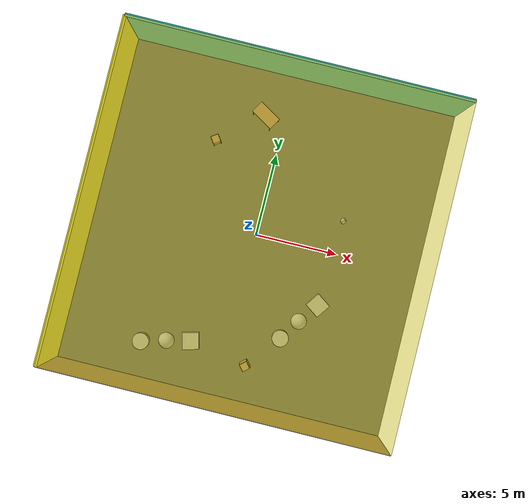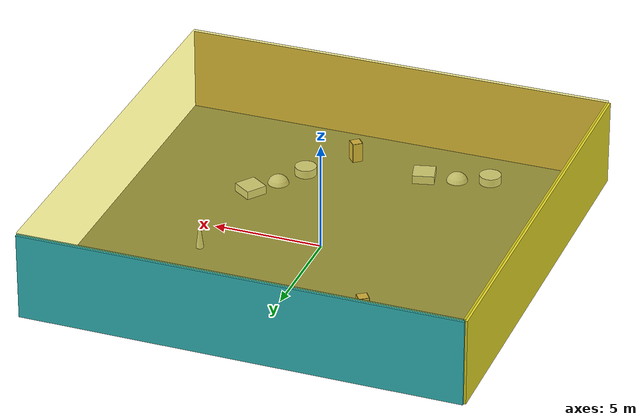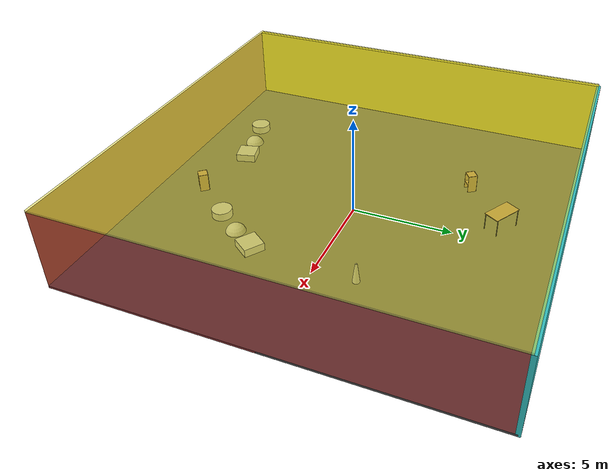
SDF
<sdf version="1.4">
 <world name="default">
  <physics type="ode">
   <max_step_size>0.001</max_step_size>
   <real_time_factor>1</real_time_factor>
   <real_time_update_rate>1000</real_time_update_rate>
   <gravity>0 0 -9.8</gravity>
  </physics>
  <scene><ambient>0.4 0.4 0.4 1</ambient><background>0.7 0.7 0.7 1</background><shadows>1</shadows></scene>
  <model name="Surrounding">
   <static>1</static>
   <link name="Ceiling">
    <collision name="Ceiling_Collision"><geometry><box><size>20 20 0.1</size></box></geometry></collision>
    <visual name="Ceiling_Visual">
     <geometry><box><size>20 20 0.1</size></box></geometry>
     <material>
      <script>
       <uri>file://media/materials/scripts/gazebo.material</uri>
       <name>Gazebo/YellowTransparent</name>
      </script>
     </material>
    </visual>
    <pose>0 0 4.05 0 0 0</pose>
   </link>
   <link name="Wall_South">
    <collision name="Wall_South_Collision">
     <geometry><box><size>20 0 4</size></box></geometry>
     <pose>0 0 2 0 -0 0</pose>
    </collision>
    <visual name="Wall_South_Visual">
     <pose>0 0 2 0 -0 0</pose>
     <geometry><box><size>20 0 4</size></box></geometry>
     <material>
      <script><uri>file://media/materials/scripts/gazebo.material</uri><name>Gazebo/WoodFloor</name></script>
     </material>
    </visual>
    <velocity_decay><linear>0</linear><angular>0</angular></velocity_decay>
    <pose>0 -10 0 0 -0 0</pose>
   </link>
   <link name="Wall_East">
    <collision name="Wall_21_Collision">
     <geometry><box><size>20 0 4</size></box></geometry>
     <pose>0 0 2 0 -0 0</pose>
    </collision>
    <visual name="Wall_21_Visual">
     <pose>0 0 2 0 -0 0</pose>
     <geometry><box><size>20 0 4</size></box></geometry>
     <material>
      <script><uri>file://media/materials/scripts/gazebo.material</uri><name>Gazebo/RedTransparent</name></script>
     </material>
    </visual>
    <velocity_decay><linear>0</linear><angular>0</angular></velocity_decay>
    <pose>10 0 0 0 -0 1.5708</pose>
   </link>
   <link name="Wall_North">
    <collision name="Wall_22_Collision">
     <geometry><box><size>20 0.2 4</size></box></geometry>
     <pose>0 0 2 0 -0 0</pose>
    </collision>
    <visual name="Wall_22_Visual">
     <pose>0 0 2 0 -0 0</pose>
     <geometry><box><size>20 0.2 4</size></box></geometry>
     <material>
      <script>
       <uri>file://media/materials/scripts/gazebo.material</uri>
       <name>Gazebo/TurquoiseGlowOutline</name>
      </script>
     </material>
    </visual>
    <velocity_decay><linear>0</linear><angular>0</angular></velocity_decay>
    <pose>0 10 0 0 -0 0</pose>
   </link>
   <link name="Wall_West">
    <collision name="Wall_23_Collision">
     <geometry><box><size>20 0.2 4</size></box></geometry>
     <pose>0 0 2 0 -0 0</pose>
    </collision>
    <visual name="Wall_23_Visual">
     <pose>0 0 2 0 -0 0</pose>
     <geometry><box><size>20 0.2 4</size></box></geometry>
     <material>
      <script><uri>file://media/materials/scripts/gazebo.material</uri><name>Gazebo/Yellow</name></script>
     </material>
    </visual>
    <velocity_decay><linear>0</linear><angular>0</angular></velocity_decay>
    <pose>-10 0 0 0 0 -1.5708</pose>
   </link>
   <link name="Ground_link">
    <collision name="collision">
     <pose>0 0 .05 0 -0 0</pose>
     <geometry><box><size>20 20 0.1</size></box></geometry>
    </collision>
    <visual name="visual">
     <pose>0 0 .05 0 -0 0</pose>
     <geometry><box><size>20 20 0.1</size></box></geometry>
     <material>
      <script><uri>file://media/materials/scripts/gazebo.material</uri><name>Gazebo/DarkGrey</name></script>
     </material>
    </visual>
   </link>
   <static>1</static>
  </model>
  <spherical_coordinates>
   <surface_model>EARTH_WGS84</surface_model>
   <latitude_deg>0</latitude_deg>
   <longitude_deg>0</longitude_deg>
   <elevation>0</elevation>
   <heading_deg>0</heading_deg>
  </spherical_coordinates>
  <light name="lightball_0" type="diffuse">
   <diffuse>0.8 0.8 0.8 1</diffuse>
   <specular>0.2 0.2 0.2 1</specular>
   <attenuation>
    <range>100</range>
    <constant>0.7</constant>
    <linear>0.01</linear>
    <quadratic>0.001</quadratic>
   </attenuation>
   <direction>-0.5 0.1 -0.9</direction>
   <pose>1.69922860991 7.51089442521 1.14403362683 0 0 0</pose>
  </light>
  <light name="lightball_1" type="diffuse">
   <diffuse>0.8 0.8 0.8 1</diffuse>
   <specular>0.2 0.2 0.2 1</specular>
   <attenuation>
    <range>100</range>
    <constant>0.7</constant>
    <linear>0.01</linear>
    <quadratic>0.001</quadratic>
   </attenuation>
   <direction>-0.5 0.1 -0.9</direction>
   <pose>-2.95162548968 8.18366433119 1.9111602455 0 0 0</pose>
  </light>
  <light name="lightball_2" type="diffuse">
   <diffuse>0.8 0.8 0.8 1</diffuse>
   <specular>0.2 0.2 0.2 1</specular>
   <attenuation>
    <range>100</range>
    <constant>0.7</constant>
    <linear>0.01</linear>
    <quadratic>0.001</quadratic>
   </attenuation>
   <direction>-0.5 0.1 -0.9</direction>
   <pose>-3.10623807153 -9.32787064685 3.11162116247 0 0 0</pose>
  </light>
  <light name="lightball_3" type="diffuse">
   <diffuse>0.8 0.8 0.8 1</diffuse>
   <specular>0.2 0.2 0.2 1</specular>
   <attenuation>
    <range>100</range>
    <constant>0.7</constant>
    <linear>0.01</linear>
    <quadratic>0.001</quadratic>
   </attenuation>
   <direction>-0.5 0.1 -0.9</direction>
   <pose>-8.5314064125 8.50777326225 1.97735261485 0 0 0</pose>
  </light>
  <light name="lightball_4" type="diffuse">
   <diffuse>0.8 0.8 0.8 1</diffuse>
   <specular>0.2 0.2 0.2 1</specular>
   <attenuation>
    <range>100</range>
    <constant>0.7</constant>
    <linear>0.01</linear>
    <quadratic>0.001</quadratic>
   </attenuation>
   <direction>-0.5 0.1 -0.9</direction>
   <pose>-7.7229800536 3.40454271494 2.33534612981 0 0 0</pose>
  </light>
  <light name="lightball_5" type="diffuse">
   <diffuse>0.8 0.8 0.8 1</diffuse>
   <specular>0.2 0.2 0.2 1</specular>
   <attenuation>
    <range>100</range>
    <constant>0.7</constant>
    <linear>0.01</linear>
    <quadratic>0.001</quadratic>
   </attenuation>
   <direction>-0.5 0.1 -0.9</direction>
   <pose>-7.20322354784 0.735583597323 0.933313006003 0 0 0</pose>
  </light>
  <light name="lightball_6" type="diffuse">
   <diffuse>0.8 0.8 0.8 1</diffuse>
   <specular>0.2 0.2 0.2 1</specular>
   <attenuation>
    <range>100</range>
    <constant>0.7</constant>
    <linear>0.01</linear>
    <quadratic>0.001</quadratic>
   </attenuation>
   <direction>-0.5 0.1 -0.9</direction>
   <pose>-8.27592635034 3.21134179393 0.703192747039 0 0 0</pose>
  </light>
  <light name="lightball_7" type="diffuse">
   <diffuse>0.8 0.8 0.8 1</diffuse>
   <specular>0.2 0.2 0.2 1</specular>
   <attenuation>
    <range>100</range>
    <constant>0.7</constant>
    <linear>0.01</linear>
    <quadratic>0.001</quadratic>
   </attenuation>
   <direction>-0.5 0.1 -0.9</direction>
   <pose>-8.4149318511 3.42924752264 1.19759423445 0 0 0</pose>
  </light>
  <light name="lightball_8" type="diffuse">
   <diffuse>0.8 0.8 0.8 1</diffuse>
   <specular>0.2 0.2 0.2 1</specular>
   <attenuation>
    <range>100</range>
    <constant>0.7</constant>
    <linear>0.01</linear>
    <quadratic>0.001</quadratic>
   </attenuation>
   <direction>-0.5 0.1 -0.9</direction>
   <pose>7.47002557712 4.67805959249 2.83564987192 0 0 0</pose>
  </light>
  <light name="lightball_9" type="diffuse">
   <diffuse>0.8 0.8 0.8 1</diffuse>
   <specular>0.2 0.2 0.2 1</specular>
   <attenuation>
    <range>100</range>
    <constant>0.7</constant>
    <linear>0.01</linear>
    <quadratic>0.001</quadratic>
   </attenuation>
   <direction>-0.5 0.1 -0.9</direction>
   <pose>-5.46334182678 -0.639491393963 0.767301352088 0 0 0</pose>
  </light>
  <light name="lightball_10" type="diffuse">
   <diffuse>0.8 0.8 0.8 1</diffuse>
   <specular>0.2 0.2 0.2 1</specular>
   <attenuation>
    <range>100</range>
    <constant>0.7</constant>
    <linear>0.01</linear>
    <quadratic>0.001</quadratic>
   </attenuation>
   <direction>-0.5 0.1 -0.9</direction>
   <pose>-3.23588829588 0.168768732409 1.90931955914 0 0 0</pose>
  </light>
  <light name="lightball_11" type="diffuse">
   <diffuse>0.8 0.8 0.8 1</diffuse>
   <specular>0.2 0.2 0.2 1</specular>
   <attenuation>
    <range>100</range>
    <constant>0.7</constant>
    <linear>0.01</linear>
    <quadratic>0.001</quadratic>
   </attenuation>
   <direction>-0.5 0.1 -0.9</direction>
   <pose>0.711574192302 -4.52379487713 3.19351437147 0 0 0</pose>
  </light>
  <light name="lightball_12" type="diffuse">
   <diffuse>0.8 0.8 0.8 1</diffuse>
   <specular>0.2 0.2 0.2 1</specular>
   <attenuation>
    <range>100</range>
    <constant>0.7</constant>
    <linear>0.01</linear>
    <quadratic>0.001</quadratic>
   </attenuation>
   <direction>-0.5 0.1 -0.9</direction>
   <pose>0.035524250699 -9.38723802155 1.56157427803 0 0 0</pose>
  </light>
  <light name="lightball_13" type="diffuse">
   <diffuse>0.8 0.8 0.8 1</diffuse>
   <specular>0.2 0.2 0.2 1</specular>
   <attenuation>
    <range>100</range>
    <constant>0.7</constant>
    <linear>0.01</linear>
    <quadratic>0.001</quadratic>
   </attenuation>
   <direction>-0.5 0.1 -0.9</direction>
   <pose>4.56069961347 1.47130170238 3.45100520538 0 0 0</pose>
  </light>
  <include>
   <uri>model://textured_shapes</uri>
   <pose>-3.7657685229 -7.49403621713 0 0 0 1.81769834183</pose>
  </include>
  <include><uri>model://cabinet</uri><pose>-3.73302252014 4.94457685555 0 0 0 2.17372514281</pose></include>
  <include><uri>model://table</uri><pose>-1.17388738526 7.03614114433 0 0 0 2.59751528673</pose></include>
  <include><uri>model://cabinet</uri><pose>1.18619621251 -7.74261169466 0 0 0 2.2659325956</pose></include>
  <include>
   <uri>model://textured_shapes</uri>
   <pose>3.72391264504 -4.46778914876 0 0 0 2.53002375855</pose>
  </include>
  <include>
   <uri>model://construction_cone</uri>
   <pose>4.90102899643 2.08395632303 0 0 0 2.32656668542</pose>
  </include>
 </world>
</sdf>

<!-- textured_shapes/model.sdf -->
<sdf version="1.6">
  <model name="textured_shapes">
    <pose>0 0 0.5 0 0 0</pose>
    <link name="box">
      <pose>0 -1.5 0 0 0 0</pose>
      <collision name="collision">
        <geometry>
          <box>
            <size>1 1 1</size>
          </box>
        </geometry>
      </collision>
      <visual name="visual">
        <geometry>
          <box>
            <size>1 1 1</size>
          </box>
        </geometry>
        <material>
          <script>
            <uri>model://../model_source/models/textured_shapes/materials/scripts</uri>
            <uri>model://../model_source/models/textured_shapes/materials/textures</uri>
            <name>TexturedShape/Squares</name>
          </script>
        </material>
      </visual>
    </link>
    <link name="sphere">
      <collision name="collision">
        <geometry>
          <sphere>
            <radius>0.5</radius>
          </sphere>
        </geometry>
      </collision>
      <visual name="visual">
        <geometry>
          <sphere>
            <radius>0.5</radius>
          </sphere>
        </geometry>
        <material>
          <script>
            <uri>model://../model_source/models/textured_shapes/materials/scripts</uri>
            <uri>model://../model_source/models/textured_shapes/materials/textures</uri>
            <name>TexturedShape/Squares</name>
          </script>
        </material>
      </visual>
    </link>
    <link name="cylinder">
      <pose>0 1.5 0 0 0 0</pose>
      <collision name="collision">
        <geometry>
          <cylinder>
            <radius>0.5</radius>
            <length>1</length>
          </cylinder>
        </geometry>
      </collision>
      <visual name="visual">
        <geometry>
          <cylinder>
            <radius>0.5</radius>
            <length>1</length>
          </cylinder>
        </geometry>
        <material>
          <script>
            <uri>model://../model_source/models/textured_shapes/materials/scripts</uri>
            <uri>model://../model_source/models/textured_shapes/materials/textures</uri>
            <name>TexturedShape/Squares</name>
          </script>
        </material>
      </visual>
    </link>
  </model>
</sdf>

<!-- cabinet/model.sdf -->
<sdf version="1.5">
  <model name="cabinet">
    <static>true</static>
    <link name="cabinet_bottom_plate">
      <inertial>
        <pose>0 0 -1 0 0 0</pose>
        <inertia>
          <ixx>2.050000</ixx>
          <ixy>0</ixy>
          <ixz>0</ixz>
          <iyy>2.050000</iyy>
          <iyz>0</iyz>
          <izz>2.050000</izz>
        </inertia>
        <mass>25.000000</mass>
      </inertial>
      <collision name="cabinet_bottom_plate_geom">
        <pose>0 0 0.010000 0 0 0</pose>
        <geometry>
          <box>
            <size>0.450000 0.450000 0.020000</size>
          </box>
        </geometry>
      </collision>
      <visual name="cabinet_bottom_plate_geom_visual">
        <pose>0 0 0.010000 0 0 0</pose>
        <geometry>
          <box>
            <size>0.450000 0.450000 0.020000</size>
          </box>
        </geometry>
        <material>
          <script>
            <uri>model://media/materials/scripts/gazebo.material</uri>
            <name>Gazebo/Wood</name>
          </script>
        </material>
      </visual>
      <collision name="cabinet_bottom_plate_geom_cabinet_back_plate">
        <pose>0.235000 0 0.510000 0 0 0</pose>
        <geometry>
          <box>
            <size>0.020000 0.450000 1.020000</size>
          </box>
        </geometry>
      </collision>
      <visual name="cabinet_bottom_plate_geom_cabinet_back_plate_visual">
        <pose>0.235000 0 0.510000 0 0 0</pose>
        <geometry>
          <box>
            <size>0.020000 0.450000 1.020000</size>
          </box>
        </geometry>
        <material>
          <script>
            <uri>model://media/materials/scripts/gazebo.material</uri>
            <name>Gazebo/Wood</name>
          </script>
        </material>
      </visual>
      <collision name="cabinet_bottom_plate_geom_cabinet_left_plate">
        <pose>0 0.235000 0.510000 0 0 0</pose>
        <geometry>
          <box>
            <size>0.450000 0.020000 1.020000</size>
          </box>
        </geometry>
      </collision>
      <visual name="cabinet_bottom_plate_geom_cabinet_left_plate_visual">
        <pose>0 0.235000 0.510000 0 0 0</pose>
        <geometry>
          <box>
            <size>0.450000 0.020000 1.020000</size>
          </box>
        </geometry>
        <material>
          <script>
            <uri>model://media/materials/scripts/gazebo.material</uri>
            <name>Gazebo/Wood</name>
          </script>
        </material>
      </visual>
      <collision name="cabinet_bottom_plate_geom_cabinet_middle_plate">
        <pose>0 0 0.510000 0 0 0</pose>
        <geometry>
          <box>
            <size>0.450000 0.450000 0.020000</size>
          </box>
        </geometry>
      </collision>
      <visual name="cabinet_bottom_plate_geom_cabinet_middle_plate_visual">
        <pose>0 0 0.510000 0 0 0</pose>
        <geometry>
          <box>
            <size>0.450000 0.450000 0.020000</size>
          </box>
        </geometry>
        <material>
          <script>
            <uri>model://media/materials/scripts/gazebo.material</uri>
            <name>Gazebo/Wood</name>
          </script>
        </material>
      </visual>
      <collision name="cabinet_bottom_plate_geom_cabinet_right_plate">
        <pose>0 -0.235000 0.510000 0 0 0</pose>
        <geometry>
          <box>
            <size>0.450000 0.020000 1.020000</size>
          </box>
        </geometry>
      </collision>
      <visual name="cabinet_bottom_plate_geom_cabinet_right_plate_visual">
        <pose>0 -0.235000 0.510000 0 0 0</pose>
        <geometry>
          <box>
            <size>0.450000 0.020000 1.020000</size>
          </box>
        </geometry>
        <material>
          <script>
            <uri>model://media/materials/scripts/gazebo.material</uri>
            <name>Gazebo/Wood</name>
          </script>
        </material>
      </visual>
      <collision name="cabinet_bottom_plate_geom_cabinet_top_plate">
        <pose>0 0 1.010000 0 0 0</pose>
        <geometry>
          <box>
            <size>0.450000 0.450000 0.020000</size>
          </box>
        </geometry>
      </collision>
      <visual name="cabinet_bottom_plate_geom_cabinet_top_plate_visual">
        <pose>0 0 1.010000 0 0 0</pose>
        <geometry>
          <box>
            <size>0.450000 0.450000 0.020000</size>
          </box>
        </geometry>
        <material>
          <script>
            <uri>model://media/materials/scripts/gazebo.material</uri>
            <name>Gazebo/Wood</name>
          </script>
        </material>
      </visual>
    </link>
  </model>
</sdf>

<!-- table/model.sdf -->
<sdf version="1.5">
  <model name="table">
    <static>true</static>
    <link name="link">
      <collision name="surface">
        <pose>0 0 1.0 0 0 0</pose>
        <geometry>
          <box>
            <size>1.5 0.8 0.03</size>
          </box>
        </geometry>
        <surface>
          <friction>
            <ode>
              <mu>0.6</mu>
              <mu2>0.6</mu2>
            </ode>
          </friction>
        </surface>
      </collision>
      <visual name="visual1">
        <pose>0 0 1.0 0 0 0</pose>
        <geometry>
          <box>
            <size>1.5 0.8 0.03</size>
          </box>
        </geometry>
        <material>
          <script>
            <uri>model://media/materials/scripts/gazebo.material</uri>
            <name>Gazebo/Wood</name>
          </script>
        </material>
      </visual>
      <collision name="front_left_leg">
        <pose>0.68 0.38 0.5 0 0 0</pose>
        <geometry>
          <cylinder>
            <radius>0.02</radius>
            <length>1.0</length>
          </cylinder>
        </geometry>
      </collision>
      <visual name="front_left_leg">
        <pose>0.68 0.38 0.5 0 0 0</pose>
        <geometry>
          <cylinder>
            <radius>0.02</radius>
            <length>1.0</length>
          </cylinder>
        </geometry>
        <material>
          <script>
            <uri>model://media/materials/scripts/gazebo.material</uri>
            <name>Gazebo/Grey</name>
          </script>
        </material>
      </visual>
      <collision name="front_right_leg">
        <pose>0.68 -0.38 0.5 0 0 0</pose>
        <geometry>
          <cylinder>
            <radius>0.02</radius>
            <length>1.0</length>
          </cylinder>
        </geometry>
      </collision>
      <visual name="front_right_leg">
        <pose>0.68 -0.38 0.5 0 0 0</pose>
        <geometry>
          <cylinder>
            <radius>0.02</radius>
            <length>1.0</length>
          </cylinder>
        </geometry>
        <material>
          <script>
            <uri>model://media/materials/scripts/gazebo.material</uri>
            <name>Gazebo/Grey</name>
          </script>
        </material>
      </visual>
      <collision name="back_right_leg">
        <pose>-0.68 -0.38 0.5 0 0 0</pose>
        <geometry>
          <cylinder>
            <radius>0.02</radius>
            <length>1.0</length>
          </cylinder>
        </geometry>
      </collision>
      <visual name="back_right_leg">
        <pose>-0.68 -0.38 0.5 0 0 0</pose>
        <geometry>
          <cylinder>
            <radius>0.02</radius>
            <length>1.0</length>
          </cylinder>
        </geometry>
        <material>
          <script>
            <uri>model://media/materials/scripts/gazebo.material</uri>
            <name>Gazebo/Grey</name>
          </script>
        </material>
      </visual>
      <collision name="back_left_leg">
        <pose>-0.68 0.38 0.5 0 0 0</pose>
        <geometry>
          <cylinder>
            <radius>0.02</radius>
            <length>1.0</length>
          </cylinder>
        </geometry>
      </collision>
      <visual name="back_left_leg">
        <pose>-0.68 0.38 0.5 0 0 0</pose>
        <geometry>
          <cylinder>
            <radius>0.02</radius>
            <length>1.0</length>
          </cylinder>
        </geometry>
        <material>
          <script>
            <uri>model://media/materials/scripts/gazebo.material</uri>
            <name>Gazebo/Grey</name>
          </script>
        </material>
      </visual>
    </link>
  </model>
</sdf>

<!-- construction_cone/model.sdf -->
<sdf version="1.5">
  <model name="Construction Cone">
    <link name="link">
      <collision name="collision">
        <geometry>
          <mesh>
            <scale>10 10 10</scale>
            <uri>file://isr-testbed/construction_cone/meshes/construction_cone.dae</uri>
          </mesh>
        </geometry>
      </collision>
      <visual name="visual">
        <geometry>
          <mesh>
            <scale>10 10 10</scale>
            <uri>file://isr-testbed/construction_cone/meshes/construction_cone.dae</uri>
          </mesh>
        </geometry>
      </visual>
    </link>
  </model>
</sdf>
